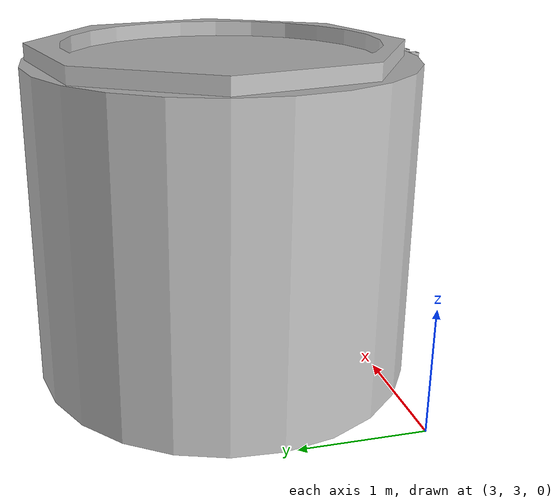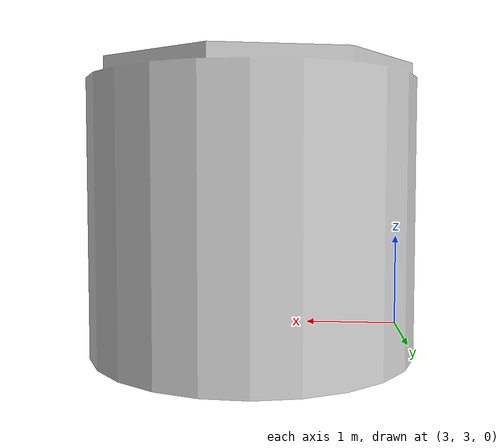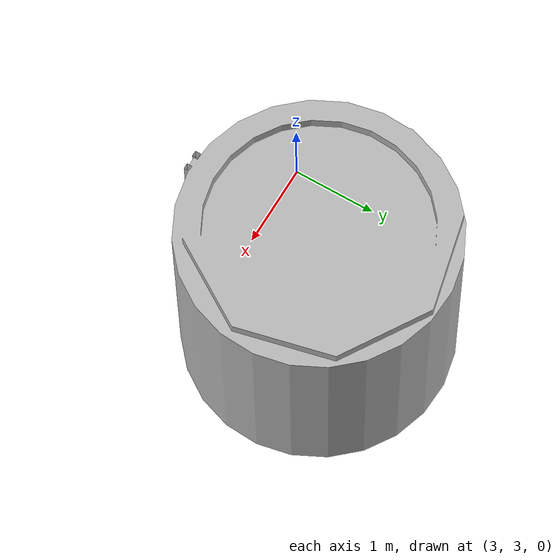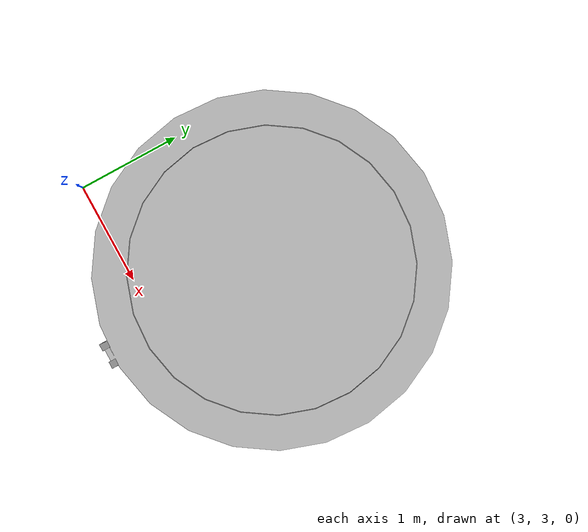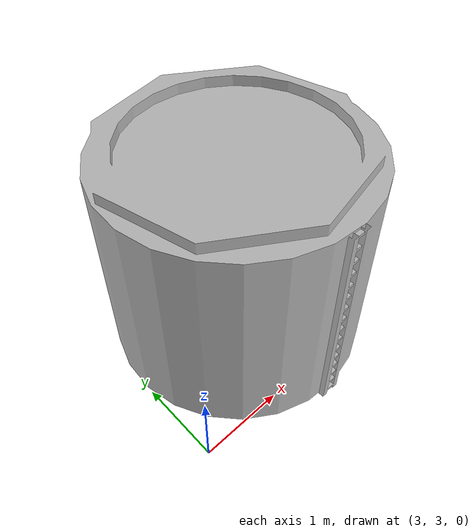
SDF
<?xml version="1.0" ?>
<sdf version="1.6">
  <model name="oiltank">
    <static>true</static>
      <link name="oiltank">
        <pose frame=''>0 0 0 0 0 0</pose>
          <collision name="oiltank">
            <geometry>
              <mesh>
                <uri>model://oiltank/model.dae</uri>
              </mesh>
            </geometry>
          </collision>
          <visual name="oiltank">
          <cast_shadows>false</cast_shadows>
            <geometry>
              <mesh>
                <uri>model://oiltank/model.dae</uri>
              </mesh>
            </geometry>
            <material>
              <script>
                <uri>model://oiltank/model.dae</uri>
                <name>oiltank</name>
              </script>
            </material>
          </visual>
      </link>
  </model>
</sdf>
